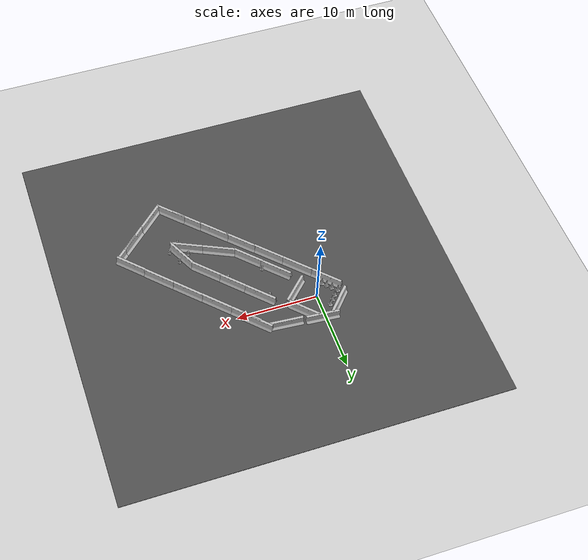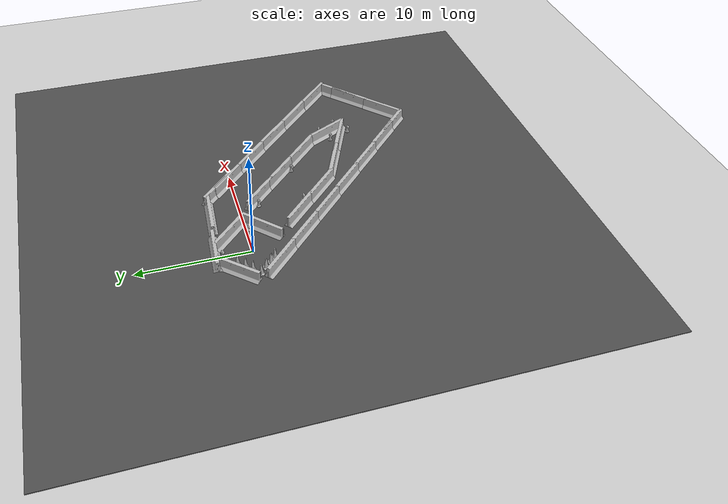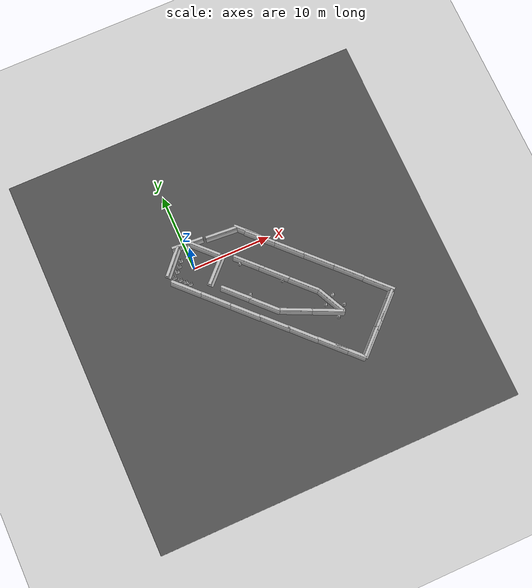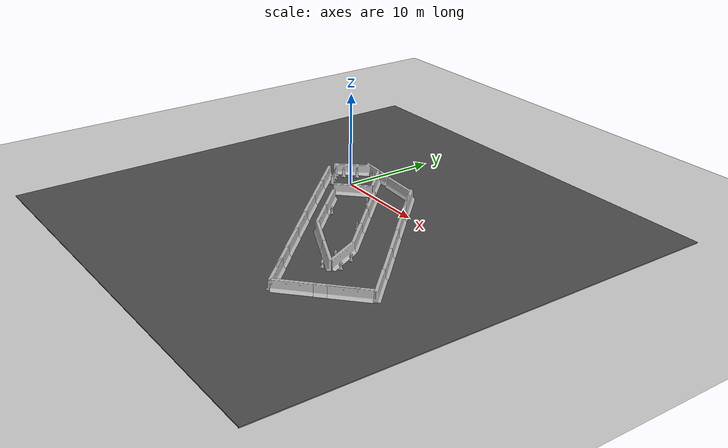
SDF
<sdf version="1.7">
 <world name="default">
  <light name="sun" type="directional">
   <pose>0 0 10 0 -0 0</pose>
   <diffuse>0.8 0.8 0.8 1</diffuse>
   <specular>0.2 0.2 0.2 1</specular>
   <attenuation>
    <range>1000</range>
    <constant>0.9</constant>
    <linear>0.01</linear>
    <quadratic>0.001</quadratic>
   </attenuation>
   <direction>-0.5 0.1 -0.9</direction>
   <spot><inner_angle>0</inner_angle><outer_angle>0</outer_angle><falloff>0</falloff></spot>
  </light>
  <model name="ground_plane">
   <static>1</static>
   <link name="link">
    <collision name="collision">
     <geometry><plane><normal>0 0 1</normal><size>100 100</size></plane></geometry>
     <surface><friction><ode><mu>100</mu><mu2>50</mu2></ode></friction></surface>
    </collision>
    <visual name="visual">
     <cast_shadows>0</cast_shadows>
     <geometry><plane><normal>0 0 1</normal><size>100 100</size></plane></geometry>
     <material>
      <script><uri>file://media/materials/scripts/gazebo.material</uri><name>Gazebo/Grey</name></script>
     </material>
    </visual>
   </link>
  </model>
  <gravity>0 0 -9.8</gravity>
  <magnetic_field>6e-06 2.3e-05 -4.2e-05</magnetic_field>
  <atmosphere type="adiabatic"/>
  <physics type="ode">
   <max_step_size>0.001</max_step_size>
   <real_time_factor>1</real_time_factor>
   <real_time_update_rate>1000</real_time_update_rate>
  </physics>
  <scene><ambient>0.4 0.4 0.4 1</ambient><background>0.7 0.7 0.7 1</background><shadows>1</shadows></scene>
  <audio><device>default</device></audio>
  <spherical_coordinates>
   <surface_model>EARTH_WGS84</surface_model>
   <latitude_deg>0</latitude_deg>
   <longitude_deg>0</longitude_deg>
   <elevation>0</elevation>
   <heading_deg>0</heading_deg>
  </spherical_coordinates>
  <model name="asphalt_plane">
   <static>1</static>
   <link name="link">
    <collision name="collision"><geometry><box><size>46.7018 49.1436 0.1</size></box></geometry></collision>
    <visual name="visual">
     <cast_shadows>0</cast_shadows>
     <geometry><box><size>46.7018 49.1436 0.1</size></box></geometry>
     <material>
      <script>
       <uri>model://asphalt_plane/materials/scripts</uri>
       <uri>model://asphalt_plane/materials/textures</uri>
       <name>vrc/asphalt</name>
      </script>
     </material>
    </visual>
   </link>
   <pose>6.15691 -5.58984 0 0 -0 0</pose>
  </model>
  <model name="Construction Cone_4_clone_clone">
   <link name="link">
    <collision name="collision">
     <geometry>
      <mesh><scale>10 10 10</scale><uri>model://construction_cone/meshes/construction_cone.dae</uri></mesh>
     </geometry>
    </collision>
    <visual name="visual">
     <geometry>
      <mesh><scale>10 10 10</scale><uri>model://construction_cone/meshes/construction_cone.dae</uri></mesh>
     </geometry>
    </visual>
    <inertial>
     <inertia><ixx>1</ixx><ixy>0</ixy><ixz>0</ixz><iyy>1</iyy><iyz>0</iyz><izz>1</izz></inertia>
     <mass>1</mass>
    </inertial>
   </link>
   <pose>-2.6682 -0.060976 0.05 0 -0 0</pose>
  </model>
  <model name="Construction Cone_4_clone_clone_clone">
   <link name="link">
    <collision name="collision">
     <geometry>
      <mesh><scale>10 10 10</scale><uri>model://construction_cone/meshes/construction_cone.dae</uri></mesh>
     </geometry>
    </collision>
    <visual name="visual">
     <geometry>
      <mesh><scale>10 10 10</scale><uri>model://construction_cone/meshes/construction_cone.dae</uri></mesh>
     </geometry>
    </visual>
    <inertial>
     <inertia><ixx>1</ixx><ixy>0</ixy><ixz>0</ixz><iyy>1</iyy><iyz>0</iyz><izz>1</izz></inertia>
     <mass>1</mass>
    </inertial>
   </link>
   <pose>2.67017 -0.030987 0.049991 0 -0 0.297791</pose>
  </model>
  <model name="fire_hydrant">
   <static>1</static>
   <link name="link">
    <collision name="collision">
     <geometry><mesh><uri>model://fire_hydrant/meshes/fire_hydrant.dae</uri></mesh></geometry>
    </collision>
    <visual name="visual">
     <geometry><mesh><uri>model://fire_hydrant/meshes/fire_hydrant.dae</uri></mesh></geometry>
    </visual>
   </link>
   <pose>0.000766 2.61649 0 0 -0 0</pose>
  </model>
  <model name="jersey_barrier">
   <static>1</static>
   <link name="link">
    <visual name="visual">
     <geometry><mesh><uri>model://jersey_barrier/meshes/jersey_barrier.dae</uri></mesh></geometry>
    </visual>
    <collision name="upright">
     <pose>0 0 0.5715 0 -0 0</pose>
     <geometry><box><size>4.06542 0.3063 1.143</size></box></geometry>
    </collision>
    <collision name="base">
     <pose>0 0 0.032258 0 -0 0</pose>
     <geometry><box><size>4.06542 0.8107 0.064516</size></box></geometry>
    </collision>
    <collision name="base2">
     <pose>0 0 0.1 0 -0 0</pose>
     <geometry><box><size>4.06542 0.65 0.1</size></box></geometry>
    </collision>
    <collision name="base3">
     <pose>0 0 0.2 0 -0 0</pose>
     <geometry><box><size>4.06542 0.5 0.1</size></box></geometry>
    </collision>
    <collision name="left-angle">
     <pose>0 -0.224 0.2401 0.9 -0 0</pose>
     <geometry><box><size>4.06542 0.5 0.064516</size></box></geometry>
    </collision>
    <collision name="right-angle">
     <pose>0 0.224 0.2401 -0.9 0 0</pose>
     <geometry><box><size>4.06542 0.5 0.064516</size></box></geometry>
    </collision>
   </link>
   <pose>-1.85554 -1.95103 0 0 0 -0.801658</pose>
  </model>
  <model name="jersey_barrier_0">
   <static>1</static>
   <link name="link">
    <visual name="visual">
     <geometry><mesh><uri>model://jersey_barrier/meshes/jersey_barrier.dae</uri></mesh></geometry>
    </visual>
    <collision name="upright">
     <pose>0 0 0.5715 0 -0 0</pose>
     <geometry><box><size>4.06542 0.3063 1.143</size></box></geometry>
    </collision>
    <collision name="base">
     <pose>0 0 0.032258 0 -0 0</pose>
     <geometry><box><size>4.06542 0.8107 0.064516</size></box></geometry>
    </collision>
    <collision name="base2">
     <pose>0 0 0.1 0 -0 0</pose>
     <geometry><box><size>4.06542 0.65 0.1</size></box></geometry>
    </collision>
    <collision name="base3">
     <pose>0 0 0.2 0 -0 0</pose>
     <geometry><box><size>4.06542 0.5 0.1</size></box></geometry>
    </collision>
    <collision name="left-angle">
     <pose>0 -0.224 0.2401 0.9 -0 0</pose>
     <geometry><box><size>4.06542 0.5 0.064516</size></box></geometry>
    </collision>
    <collision name="right-angle">
     <pose>0 0.224 0.2401 -0.9 0 0</pose>
     <geometry><box><size>4.06542 0.5 0.064516</size></box></geometry>
    </collision>
   </link>
   <pose>-2.11579 1.72846 0 0 -0 0.839514</pose>
  </model>
  <model name="jersey_barrier_1">
   <static>1</static>
   <link name="link">
    <visual name="visual">
     <geometry><mesh><uri>model://jersey_barrier/meshes/jersey_barrier.dae</uri></mesh></geometry>
    </visual>
    <collision name="upright">
     <pose>0 0 0.5715 0 -0 0</pose>
     <geometry><box><size>4.06542 0.3063 1.143</size></box></geometry>
    </collision>
    <collision name="base">
     <pose>0 0 0.032258 0 -0 0</pose>
     <geometry><box><size>4.06542 0.8107 0.064516</size></box></geometry>
    </collision>
    <collision name="base2">
     <pose>0 0 0.1 0 -0 0</pose>
     <geometry><box><size>4.06542 0.65 0.1</size></box></geometry>
    </collision>
    <collision name="base3">
     <pose>0 0 0.2 0 -0 0</pose>
     <geometry><box><size>4.06542 0.5 0.1</size></box></geometry>
    </collision>
    <collision name="left-angle">
     <pose>0 -0.224 0.2401 0.9 -0 0</pose>
     <geometry><box><size>4.06542 0.5 0.064516</size></box></geometry>
    </collision>
    <collision name="right-angle">
     <pose>0 0.224 0.2401 -0.9 0 0</pose>
     <geometry><box><size>4.06542 0.5 0.064516</size></box></geometry>
    </collision>
   </link>
   <pose>2.33482 -1.36227 0.011408 0.007203 -0.000416 0.783129</pose>
  </model>
  <model name="jersey_barrier_2">
   <static>1</static>
   <link name="link">
    <visual name="visual">
     <geometry><mesh><uri>model://jersey_barrier/meshes/jersey_barrier.dae</uri></mesh></geometry>
    </visual>
    <collision name="upright">
     <pose>0 0 0.5715 0 -0 0</pose>
     <geometry><box><size>4.06542 0.3063 1.143</size></box></geometry>
    </collision>
    <collision name="base">
     <pose>0 0 0.032258 0 -0 0</pose>
     <geometry><box><size>4.06542 0.8107 0.064516</size></box></geometry>
    </collision>
    <collision name="base2">
     <pose>0 0 0.1 0 -0 0</pose>
     <geometry><box><size>4.06542 0.65 0.1</size></box></geometry>
    </collision>
    <collision name="base3">
     <pose>0 0 0.2 0 -0 0</pose>
     <geometry><box><size>4.06542 0.5 0.1</size></box></geometry>
    </collision>
    <collision name="left-angle">
     <pose>0 -0.224 0.2401 0.9 -0 0</pose>
     <geometry><box><size>4.06542 0.5 0.064516</size></box></geometry>
    </collision>
    <collision name="right-angle">
     <pose>0 0.224 0.2401 -0.9 0 0</pose>
     <geometry><box><size>4.06542 0.5 0.064516</size></box></geometry>
    </collision>
   </link>
   <pose>0.443474 3.1446 0 0 0 -0.074187</pose>
  </model>
  <model name="jersey_barrier_clone">
   <static>1</static>
   <link name="link">
    <visual name="visual">
     <geometry><mesh><uri>model://jersey_barrier/meshes/jersey_barrier.dae</uri></mesh></geometry>
    </visual>
    <collision name="upright">
     <pose>0 0 0.5715 0 -0 0</pose>
     <geometry><box><size>4.06542 0.3063 1.143</size></box></geometry>
    </collision>
    <collision name="base">
     <pose>0 0 0.032258 0 -0 0</pose>
     <geometry><box><size>4.06542 0.8107 0.064516</size></box></geometry>
    </collision>
    <collision name="base2">
     <pose>0 0 0.1 0 -0 0</pose>
     <geometry><box><size>4.06542 0.65 0.1</size></box></geometry>
    </collision>
    <collision name="base3">
     <pose>0 0 0.2 0 -0 0</pose>
     <geometry><box><size>4.06542 0.5 0.1</size></box></geometry>
    </collision>
    <collision name="left-angle">
     <pose>0 -0.224 0.2401 0.9 -0 0</pose>
     <geometry><box><size>4.06542 0.5 0.064516</size></box></geometry>
    </collision>
    <collision name="right-angle">
     <pose>0 0.224 0.2401 -0.9 0 0</pose>
     <geometry><box><size>4.06542 0.5 0.064516</size></box></geometry>
    </collision>
   </link>
   <pose>2.19609 1.60895 0 0 0 -0.801658</pose>
  </model>
  <model name="Construction Cone_4_clone_clone_clone_0">
   <link name="link">
    <collision name="collision">
     <geometry>
      <mesh><scale>10 10 10</scale><uri>model://construction_cone/meshes/construction_cone.dae</uri></mesh>
     </geometry>
    </collision>
    <visual name="visual">
     <geometry>
      <mesh><scale>10 10 10</scale><uri>model://construction_cone/meshes/construction_cone.dae</uri></mesh>
     </geometry>
    </visual>
    <inertial>
     <inertia><ixx>1</ixx><ixy>0</ixy><ixz>0</ixz><iyy>1</iyy><iyz>0</iyz><izz>1</izz></inertia>
     <mass>1</mass>
    </inertial>
   </link>
   <pose>-2.10482 -0.60902 0.05 -1e-06 0 0</pose>
  </model>
  <model name="Construction Cone_4_clone_clone_clone_1">
   <link name="link">
    <collision name="collision">
     <geometry>
      <mesh><scale>10 10 10</scale><uri>model://construction_cone/meshes/construction_cone.dae</uri></mesh>
     </geometry>
    </collision>
    <visual name="visual">
     <geometry>
      <mesh><scale>10 10 10</scale><uri>model://construction_cone/meshes/construction_cone.dae</uri></mesh>
     </geometry>
    </visual>
    <inertial>
     <inertia><ixx>1</ixx><ixy>0</ixy><ixz>0</ixz><iyy>1</iyy><iyz>0</iyz><izz>1</izz></inertia>
     <mass>1</mass>
    </inertial>
   </link>
   <pose>-2.06646 0.501267 0.05 -1e-06 -0 0</pose>
  </model>
  <model name="Construction Cone_4_clone_clone_clone_2">
   <link name="link">
    <collision name="collision">
     <geometry>
      <mesh><scale>10 10 10</scale><uri>model://construction_cone/meshes/construction_cone.dae</uri></mesh>
     </geometry>
    </collision>
    <visual name="visual">
     <geometry>
      <mesh><scale>10 10 10</scale><uri>model://construction_cone/meshes/construction_cone.dae</uri></mesh>
     </geometry>
    </visual>
    <inertial>
     <inertia><ixx>1</ixx><ixy>0</ixy><ixz>0</ixz><iyy>1</iyy><iyz>0</iyz><izz>1</izz></inertia>
     <mass>1</mass>
    </inertial>
   </link>
   <pose>-1.62516 -1.12694 0.049999 1e-06 3e-06 -0</pose>
  </model>
  <model name="Construction Cone_4_clone_clone_clone_3">
   <link name="link">
    <collision name="collision">
     <geometry>
      <mesh><scale>10 10 10</scale><uri>model://construction_cone/meshes/construction_cone.dae</uri></mesh>
     </geometry>
    </collision>
    <visual name="visual">
     <geometry>
      <mesh><scale>10 10 10</scale><uri>model://construction_cone/meshes/construction_cone.dae</uri></mesh>
     </geometry>
    </visual>
    <inertial>
     <inertia><ixx>1</ixx><ixy>0</ixy><ixz>0</ixz><iyy>1</iyy><iyz>0</iyz><izz>1</izz></inertia>
     <mass>1</mass>
    </inertial>
   </link>
   <pose>-1.18524 -1.5802 0.05 0 -0 0</pose>
  </model>
  <model name="Construction Cone_4_clone_clone_clone_4">
   <link name="link">
    <collision name="collision">
     <geometry>
      <mesh><scale>10 10 10</scale><uri>model://construction_cone/meshes/construction_cone.dae</uri></mesh>
     </geometry>
    </collision>
    <visual name="visual">
     <geometry>
      <mesh><scale>10 10 10</scale><uri>model://construction_cone/meshes/construction_cone.dae</uri></mesh>
     </geometry>
    </visual>
    <inertial>
     <inertia><ixx>1</ixx><ixy>0</ixy><ixz>0</ixz><iyy>1</iyy><iyz>0</iyz><izz>1</izz></inertia>
     <mass>1</mass>
    </inertial>
   </link>
   <pose>-1.58993 1.02235 0.05 -1e-06 -0 -0</pose>
  </model>
  <model name="Construction Cone_4_clone_clone_clone_5">
   <link name="link">
    <collision name="collision">
     <geometry>
      <mesh><scale>10 10 10</scale><uri>model://construction_cone/meshes/construction_cone.dae</uri></mesh>
     </geometry>
    </collision>
    <visual name="visual">
     <geometry>
      <mesh><scale>10 10 10</scale><uri>model://construction_cone/meshes/construction_cone.dae</uri></mesh>
     </geometry>
    </visual>
    <inertial>
     <inertia><ixx>1</ixx><ixy>0</ixy><ixz>0</ixz><iyy>1</iyy><iyz>0</iyz><izz>1</izz></inertia>
     <mass>1</mass>
    </inertial>
   </link>
   <pose>-1.12586 1.58595 0.05 0 -0 0</pose>
  </model>
  <model name="jersey_barrier_clone_0">
   <static>1</static>
   <link name="link">
    <visual name="visual">
     <geometry><mesh><uri>model://jersey_barrier/meshes/jersey_barrier.dae</uri></mesh></geometry>
    </visual>
    <collision name="upright">
     <pose>0 0 0.5715 0 -0 0</pose>
     <geometry><box><size>4.06542 0.3063 1.143</size></box></geometry>
    </collision>
    <collision name="base">
     <pose>0 0 0.032258 0 -0 0</pose>
     <geometry><box><size>4.06542 0.8107 0.064516</size></box></geometry>
    </collision>
    <collision name="base2">
     <pose>0 0 0.1 0 -0 0</pose>
     <geometry><box><size>4.06542 0.65 0.1</size></box></geometry>
    </collision>
    <collision name="base3">
     <pose>0 0 0.2 0 -0 0</pose>
     <geometry><box><size>4.06542 0.5 0.1</size></box></geometry>
    </collision>
    <collision name="left-angle">
     <pose>0 -0.224 0.2401 0.9 -0 0</pose>
     <geometry><box><size>4.06542 0.5 0.064516</size></box></geometry>
    </collision>
    <collision name="right-angle">
     <pose>0 0.224 0.2401 -0.9 0 0</pose>
     <geometry><box><size>4.06542 0.5 0.064516</size></box></geometry>
    </collision>
   </link>
   <pose>0.873662 -4.75446 0 0 0 -0.801658</pose>
  </model>
  <model name="jersey_barrier_clone_1">
   <static>1</static>
   <link name="link">
    <visual name="visual">
     <geometry><mesh><uri>model://jersey_barrier/meshes/jersey_barrier.dae</uri></mesh></geometry>
    </visual>
    <collision name="upright">
     <pose>0 0 0.5715 0 -0 0</pose>
     <geometry><box><size>4.06542 0.3063 1.143</size></box></geometry>
    </collision>
    <collision name="base">
     <pose>0 0 0.032258 0 -0 0</pose>
     <geometry><box><size>4.06542 0.8107 0.064516</size></box></geometry>
    </collision>
    <collision name="base2">
     <pose>0 0 0.1 0 -0 0</pose>
     <geometry><box><size>4.06542 0.65 0.1</size></box></geometry>
    </collision>
    <collision name="base3">
     <pose>0 0 0.2 0 -0 0</pose>
     <geometry><box><size>4.06542 0.5 0.1</size></box></geometry>
    </collision>
    <collision name="left-angle">
     <pose>0 -0.224 0.2401 0.9 -0 0</pose>
     <geometry><box><size>4.06542 0.5 0.064516</size></box></geometry>
    </collision>
    <collision name="right-angle">
     <pose>0 0.224 0.2401 -0.9 0 0</pose>
     <geometry><box><size>4.06542 0.5 0.064516</size></box></geometry>
    </collision>
   </link>
   <pose>3.5774 -7.53993 0 0 0 -0.801658</pose>
  </model>
  <model name="jersey_barrier_clone_2">
   <static>1</static>
   <link name="link">
    <visual name="visual">
     <geometry><mesh><uri>model://jersey_barrier/meshes/jersey_barrier.dae</uri></mesh></geometry>
    </visual>
    <collision name="upright">
     <pose>0 0 0.5715 0 -0 0</pose>
     <geometry><box><size>4.06542 0.3063 1.143</size></box></geometry>
    </collision>
    <collision name="base">
     <pose>0 0 0.032258 0 -0 0</pose>
     <geometry><box><size>4.06542 0.8107 0.064516</size></box></geometry>
    </collision>
    <collision name="base2">
     <pose>0 0 0.1 0 -0 0</pose>
     <geometry><box><size>4.06542 0.65 0.1</size></box></geometry>
    </collision>
    <collision name="base3">
     <pose>0 0 0.2 0 -0 0</pose>
     <geometry><box><size>4.06542 0.5 0.1</size></box></geometry>
    </collision>
    <collision name="left-angle">
     <pose>0 -0.224 0.2401 0.9 -0 0</pose>
     <geometry><box><size>4.06542 0.5 0.064516</size></box></geometry>
    </collision>
    <collision name="right-angle">
     <pose>0 0.224 0.2401 -0.9 0 0</pose>
     <geometry><box><size>4.06542 0.5 0.064516</size></box></geometry>
    </collision>
   </link>
   <pose>6.27443 -10.2689 0 0 0 -0.801658</pose>
  </model>
  <model name="jersey_barrier_clone_3">
   <static>1</static>
   <link name="link">
    <visual name="visual">
     <geometry><mesh><uri>model://jersey_barrier/meshes/jersey_barrier.dae</uri></mesh></geometry>
    </visual>
    <collision name="upright">
     <pose>0 0 0.5715 0 -0 0</pose>
     <geometry><box><size>4.06542 0.3063 1.143</size></box></geometry>
    </collision>
    <collision name="base">
     <pose>0 0 0.032258 0 -0 0</pose>
     <geometry><box><size>4.06542 0.8107 0.064516</size></box></geometry>
    </collision>
    <collision name="base2">
     <pose>0 0 0.1 0 -0 0</pose>
     <geometry><box><size>4.06542 0.65 0.1</size></box></geometry>
    </collision>
    <collision name="base3">
     <pose>0 0 0.2 0 -0 0</pose>
     <geometry><box><size>4.06542 0.5 0.1</size></box></geometry>
    </collision>
    <collision name="left-angle">
     <pose>0 -0.224 0.2401 0.9 -0 0</pose>
     <geometry><box><size>4.06542 0.5 0.064516</size></box></geometry>
    </collision>
    <collision name="right-angle">
     <pose>0 0.224 0.2401 -0.9 0 0</pose>
     <geometry><box><size>4.06542 0.5 0.064516</size></box></geometry>
    </collision>
   </link>
   <pose>8.88419 -12.9197 0 0 0 -0.801658</pose>
  </model>
  <model name="jersey_barrier_clone_4">
   <static>1</static>
   <link name="link">
    <visual name="visual">
     <geometry><mesh><uri>model://jersey_barrier/meshes/jersey_barrier.dae</uri></mesh></geometry>
    </visual>
    <collision name="upright">
     <pose>0 0 0.5715 0 -0 0</pose>
     <geometry><box><size>4.06542 0.3063 1.143</size></box></geometry>
    </collision>
    <collision name="base">
     <pose>0 0 0.032258 0 -0 0</pose>
     <geometry><box><size>4.06542 0.8107 0.064516</size></box></geometry>
    </collision>
    <collision name="base2">
     <pose>0 0 0.1 0 -0 0</pose>
     <geometry><box><size>4.06542 0.65 0.1</size></box></geometry>
    </collision>
    <collision name="base3">
     <pose>0 0 0.2 0 -0 0</pose>
     <geometry><box><size>4.06542 0.5 0.1</size></box></geometry>
    </collision>
    <collision name="left-angle">
     <pose>0 -0.224 0.2401 0.9 -0 0</pose>
     <geometry><box><size>4.06542 0.5 0.064516</size></box></geometry>
    </collision>
    <collision name="right-angle">
     <pose>0 0.224 0.2401 -0.9 0 0</pose>
     <geometry><box><size>4.06542 0.5 0.064516</size></box></geometry>
    </collision>
   </link>
   <pose>11.5844 -15.6475 0 0 0 -0.801658</pose>
  </model>
  <model name="jersey_barrier_clone_5">
   <static>1</static>
   <link name="link">
    <visual name="visual">
     <geometry><mesh><uri>model://jersey_barrier/meshes/jersey_barrier.dae</uri></mesh></geometry>
    </visual>
    <collision name="upright">
     <pose>0 0 0.5715 0 -0 0</pose>
     <geometry><box><size>4.06542 0.3063 1.143</size></box></geometry>
    </collision>
    <collision name="base">
     <pose>0 0 0.032258 0 -0 0</pose>
     <geometry><box><size>4.06542 0.8107 0.064516</size></box></geometry>
    </collision>
    <collision name="base2">
     <pose>0 0 0.1 0 -0 0</pose>
     <geometry><box><size>4.06542 0.65 0.1</size></box></geometry>
    </collision>
    <collision name="base3">
     <pose>0 0 0.2 0 -0 0</pose>
     <geometry><box><size>4.06542 0.5 0.1</size></box></geometry>
    </collision>
    <collision name="left-angle">
     <pose>0 -0.224 0.2401 0.9 -0 0</pose>
     <geometry><box><size>4.06542 0.5 0.064516</size></box></geometry>
    </collision>
    <collision name="right-angle">
     <pose>0 0.224 0.2401 -0.9 0 0</pose>
     <geometry><box><size>4.06542 0.5 0.064516</size></box></geometry>
    </collision>
   </link>
   <pose>3.48641 -5.04299 0 0 0 -0.801658</pose>
  </model>
  <model name="jersey_barrier_clone_5_clone">
   <static>1</static>
   <link name="link">
    <visual name="visual">
     <geometry><mesh><uri>model://jersey_barrier/meshes/jersey_barrier.dae</uri></mesh></geometry>
    </visual>
    <collision name="upright">
     <pose>0 0 0.5715 0 -0 0</pose>
     <geometry><box><size>4.06542 0.3063 1.143</size></box></geometry>
    </collision>
    <collision name="base">
     <pose>0 0 0.032258 0 -0 0</pose>
     <geometry><box><size>4.06542 0.8107 0.064516</size></box></geometry>
    </collision>
    <collision name="base2">
     <pose>0 0 0.1 0 -0 0</pose>
     <geometry><box><size>4.06542 0.65 0.1</size></box></geometry>
    </collision>
    <collision name="base3">
     <pose>0 0 0.2 0 -0 0</pose>
     <geometry><box><size>4.06542 0.5 0.1</size></box></geometry>
    </collision>
    <collision name="left-angle">
     <pose>0 -0.224 0.2401 0.9 -0 0</pose>
     <geometry><box><size>4.06542 0.5 0.064516</size></box></geometry>
    </collision>
    <collision name="right-angle">
     <pose>0 0.224 0.2401 -0.9 0 0</pose>
     <geometry><box><size>4.06542 0.5 0.064516</size></box></geometry>
    </collision>
   </link>
   <pose>6.08884 -7.76781 0 0 0 -0.801658</pose>
  </model>
  <model name="jersey_barrier_clone_5_clone_clone">
   <static>1</static>
   <link name="link">
    <visual name="visual">
     <geometry><mesh><uri>model://jersey_barrier/meshes/jersey_barrier.dae</uri></mesh></geometry>
    </visual>
    <collision name="upright">
     <pose>0 0 0.5715 0 -0 0</pose>
     <geometry><box><size>4.06542 0.3063 1.143</size></box></geometry>
    </collision>
    <collision name="base">
     <pose>0 0 0.032258 0 -0 0</pose>
     <geometry><box><size>4.06542 0.8107 0.064516</size></box></geometry>
    </collision>
    <collision name="base2">
     <pose>0 0 0.1 0 -0 0</pose>
     <geometry><box><size>4.06542 0.65 0.1</size></box></geometry>
    </collision>
    <collision name="base3">
     <pose>0 0 0.2 0 -0 0</pose>
     <geometry><box><size>4.06542 0.5 0.1</size></box></geometry>
    </collision>
    <collision name="left-angle">
     <pose>0 -0.224 0.2401 0.9 -0 0</pose>
     <geometry><box><size>4.06542 0.5 0.064516</size></box></geometry>
    </collision>
    <collision name="right-angle">
     <pose>0 0.224 0.2401 -0.9 0 0</pose>
     <geometry><box><size>4.06542 0.5 0.064516</size></box></geometry>
    </collision>
   </link>
   <pose>9.24063 -9.94722 0 0 0 -0.439178</pose>
  </model>
  <model name="jersey_barrier_clone_5_clone_clone_clone">
   <static>1</static>
   <link name="link">
    <visual name="visual">
     <geometry><mesh><uri>model://jersey_barrier/meshes/jersey_barrier.dae</uri></mesh></geometry>
    </visual>
    <collision name="upright">
     <pose>0 0 0.5715 0 -0 0</pose>
     <geometry><box><size>4.06542 0.3063 1.143</size></box></geometry>
    </collision>
    <collision name="base">
     <pose>0 0 0.032258 0 -0 0</pose>
     <geometry><box><size>4.06542 0.8107 0.064516</size></box></geometry>
    </collision>
    <collision name="base2">
     <pose>0 0 0.1 0 -0 0</pose>
     <geometry><box><size>4.06542 0.65 0.1</size></box></geometry>
    </collision>
    <collision name="base3">
     <pose>0 0 0.2 0 -0 0</pose>
     <geometry><box><size>4.06542 0.5 0.1</size></box></geometry>
    </collision>
    <collision name="left-angle">
     <pose>0 -0.224 0.2401 0.9 -0 0</pose>
     <geometry><box><size>4.06542 0.5 0.064516</size></box></geometry>
    </collision>
    <collision name="right-angle">
     <pose>0 0.224 0.2401 -0.9 0 0</pose>
     <geometry><box><size>4.06542 0.5 0.064516</size></box></geometry>
    </collision>
   </link>
   <pose>12.8333 -11.6294 0 0 0 -0.439178</pose>
  </model>
  <model name="jersey_barrier_clone_5_clone_clone_clone_clone">
   <static>1</static>
   <link name="link">
    <visual name="visual">
     <geometry><mesh><uri>model://jersey_barrier/meshes/jersey_barrier.dae</uri></mesh></geometry>
    </visual>
    <collision name="upright">
     <pose>0 0 0.5715 0 -0 0</pose>
     <geometry><box><size>4.06542 0.3063 1.143</size></box></geometry>
    </collision>
    <collision name="base">
     <pose>0 0 0.032258 0 -0 0</pose>
     <geometry><box><size>4.06542 0.8107 0.064516</size></box></geometry>
    </collision>
    <collision name="base2">
     <pose>0 0 0.1 0 -0 0</pose>
     <geometry><box><size>4.06542 0.65 0.1</size></box></geometry>
    </collision>
    <collision name="base3">
     <pose>0 0 0.2 0 -0 0</pose>
     <geometry><box><size>4.06542 0.5 0.1</size></box></geometry>
    </collision>
    <collision name="left-angle">
     <pose>0 -0.224 0.2401 0.9 -0 0</pose>
     <geometry><box><size>4.06542 0.5 0.064516</size></box></geometry>
    </collision>
    <collision name="right-angle">
     <pose>0 0.224 0.2401 -0.9 0 0</pose>
     <geometry><box><size>4.06542 0.5 0.064516</size></box></geometry>
    </collision>
   </link>
   <pose>13.7174 -10.6036 0 0 0 -1.12639</pose>
  </model>
  <model name="jersey_barrier_clone_5_clone_clone_0">
   <static>1</static>
   <link name="link">
    <visual name="visual">
     <geometry><mesh><uri>model://jersey_barrier/meshes/jersey_barrier.dae</uri></mesh></geometry>
    </visual>
    <collision name="upright">
     <pose>0 0 0.5715 0 -0 0</pose>
     <geometry><box><size>4.06542 0.3063 1.143</size></box></geometry>
    </collision>
    <collision name="base">
     <pose>0 0 0.032258 0 -0 0</pose>
     <geometry><box><size>4.06542 0.8107 0.064516</size></box></geometry>
    </collision>
    <collision name="base2">
     <pose>0 0 0.1 0 -0 0</pose>
     <geometry><box><size>4.06542 0.65 0.1</size></box></geometry>
    </collision>
    <collision name="base3">
     <pose>0 0 0.2 0 -0 0</pose>
     <geometry><box><size>4.06542 0.5 0.1</size></box></geometry>
    </collision>
    <collision name="left-angle">
     <pose>0 -0.224 0.2401 0.9 -0 0</pose>
     <geometry><box><size>4.06542 0.5 0.064516</size></box></geometry>
    </collision>
    <collision name="right-angle">
     <pose>0 0.224 0.2401 -0.9 0 0</pose>
     <geometry><box><size>4.06542 0.5 0.064516</size></box></geometry>
    </collision>
   </link>
   <pose>11.4997 -7.37985 0 0 0 -0.801658</pose>
  </model>
  <model name="jersey_barrier_clone_5_clone_clone_1">
   <static>1</static>
   <link name="link">
    <visual name="visual">
     <geometry><mesh><uri>model://jersey_barrier/meshes/jersey_barrier.dae</uri></mesh></geometry>
    </visual>
    <collision name="upright">
     <pose>0 0 0.5715 0 -0 0</pose>
     <geometry><box><size>4.06542 0.3063 1.143</size></box></geometry>
    </collision>
    <collision name="base">
     <pose>0 0 0.032258 0 -0 0</pose>
     <geometry><box><size>4.06542 0.8107 0.064516</size></box></geometry>
    </collision>
    <collision name="base2">
     <pose>0 0 0.1 0 -0 0</pose>
     <geometry><box><size>4.06542 0.65 0.1</size></box></geometry>
    </collision>
    <collision name="base3">
     <pose>0 0 0.2 0 -0 0</pose>
     <geometry><box><size>4.06542 0.5 0.1</size></box></geometry>
    </collision>
    <collision name="left-angle">
     <pose>0 -0.224 0.2401 0.9 -0 0</pose>
     <geometry><box><size>4.06542 0.5 0.064516</size></box></geometry>
    </collision>
    <collision name="right-angle">
     <pose>0 0.224 0.2401 -0.9 0 0</pose>
     <geometry><box><size>4.06542 0.5 0.064516</size></box></geometry>
    </collision>
   </link>
   <pose>8.80553 -4.5792 0 0 0 -0.801658</pose>
  </model>
  <model name="jersey_barrier_clone_5_clone_clone_2">
   <static>1</static>
   <link name="link">
    <visual name="visual">
     <geometry><mesh><uri>model://jersey_barrier/meshes/jersey_barrier.dae</uri></mesh></geometry>
    </visual>
    <collision name="upright">
     <pose>0 0 0.5715 0 -0 0</pose>
     <geometry><box><size>4.06542 0.3063 1.143</size></box></geometry>
    </collision>
    <collision name="base">
     <pose>0 0 0.032258 0 -0 0</pose>
     <geometry><box><size>4.06542 0.8107 0.064516</size></box></geometry>
    </collision>
    <collision name="base2">
     <pose>0 0 0.1 0 -0 0</pose>
     <geometry><box><size>4.06542 0.65 0.1</size></box></geometry>
    </collision>
    <collision name="base3">
     <pose>0 0 0.2 0 -0 0</pose>
     <geometry><box><size>4.06542 0.5 0.1</size></box></geometry>
    </collision>
    <collision name="left-angle">
     <pose>0 -0.224 0.2401 0.9 -0 0</pose>
     <geometry><box><size>4.06542 0.5 0.064516</size></box></geometry>
    </collision>
    <collision name="right-angle">
     <pose>0 0.224 0.2401 -0.9 0 0</pose>
     <geometry><box><size>4.06542 0.5 0.064516</size></box></geometry>
    </collision>
   </link>
   <pose>6.43805 -2.12096 0 0 0 -0.801658</pose>
  </model>
  <model name="fire_hydrant_0">
   <static>1</static>
   <link name="link">
    <collision name="collision">
     <geometry><mesh><uri>model://fire_hydrant/meshes/fire_hydrant.dae</uri></mesh></geometry>
    </collision>
    <visual name="visual">
     <geometry><mesh><uri>model://fire_hydrant/meshes/fire_hydrant.dae</uri></mesh></geometry>
    </visual>
   </link>
   <pose>13.7254 -12.7642 0 0 -0 0</pose>
  </model>
  <model name="fire_hydrant_1">
   <static>1</static>
   <link name="link">
    <collision name="collision">
     <geometry><mesh><uri>model://fire_hydrant/meshes/fire_hydrant.dae</uri></mesh></geometry>
    </collision>
    <visual name="visual">
     <geometry><mesh><uri>model://fire_hydrant/meshes/fire_hydrant.dae</uri></mesh></geometry>
    </visual>
   </link>
   <pose>14.9954 -11.6288 0 0 -0 0</pose>
  </model>
  <model name="jersey_barrier_clone_4_clone">
   <static>1</static>
   <link name="link">
    <visual name="visual">
     <geometry><mesh><uri>model://jersey_barrier/meshes/jersey_barrier.dae</uri></mesh></geometry>
    </visual>
    <collision name="upright">
     <pose>0 0 0.5715 0 -0 0</pose>
     <geometry><box><size>4.06542 0.3063 1.143</size></box></geometry>
    </collision>
    <collision name="base">
     <pose>0 0 0.032258 0 -0 0</pose>
     <geometry><box><size>4.06542 0.8107 0.064516</size></box></geometry>
    </collision>
    <collision name="base2">
     <pose>0 0 0.1 0 -0 0</pose>
     <geometry><box><size>4.06542 0.65 0.1</size></box></geometry>
    </collision>
    <collision name="base3">
     <pose>0 0 0.2 0 -0 0</pose>
     <geometry><box><size>4.06542 0.5 0.1</size></box></geometry>
    </collision>
    <collision name="left-angle">
     <pose>0 -0.224 0.2401 0.9 -0 0</pose>
     <geometry><box><size>4.06542 0.5 0.064516</size></box></geometry>
    </collision>
    <collision name="right-angle">
     <pose>0 0.224 0.2401 -0.9 0 0</pose>
     <geometry><box><size>4.06542 0.5 0.064516</size></box></geometry>
    </collision>
   </link>
   <pose>13.1987 -17.272 0 0 0 -0.801658</pose>
  </model>
  <model name="jersey_barrier_clone_4_clone_clone">
   <static>1</static>
   <link name="link">
    <visual name="visual">
     <geometry><mesh><uri>model://jersey_barrier/meshes/jersey_barrier.dae</uri></mesh></geometry>
    </visual>
    <collision name="upright">
     <pose>0 0 0.5715 0 -0 0</pose>
     <geometry><box><size>4.06542 0.3063 1.143</size></box></geometry>
    </collision>
    <collision name="base">
     <pose>0 0 0.032258 0 -0 0</pose>
     <geometry><box><size>4.06542 0.8107 0.064516</size></box></geometry>
    </collision>
    <collision name="base2">
     <pose>0 0 0.1 0 -0 0</pose>
     <geometry><box><size>4.06542 0.65 0.1</size></box></geometry>
    </collision>
    <collision name="base3">
     <pose>0 0 0.2 0 -0 0</pose>
     <geometry><box><size>4.06542 0.5 0.1</size></box></geometry>
    </collision>
    <collision name="left-angle">
     <pose>0 -0.224 0.2401 0.9 -0 0</pose>
     <geometry><box><size>4.06542 0.5 0.064516</size></box></geometry>
    </collision>
    <collision name="right-angle">
     <pose>0 0.224 0.2401 -0.9 0 0</pose>
     <geometry><box><size>4.06542 0.5 0.064516</size></box></geometry>
    </collision>
   </link>
   <pose>15.9583 -17.1924 0 0 0 -2.38011</pose>
  </model>
  <model name="jersey_barrier_clone_4_clone_clone_clone">
   <static>1</static>
   <link name="link">
    <visual name="visual">
     <geometry><mesh><uri>model://jersey_barrier/meshes/jersey_barrier.dae</uri></mesh></geometry>
    </visual>
    <collision name="upright">
     <pose>0 0 0.5715 0 -0 0</pose>
     <geometry><box><size>4.06542 0.3063 1.143</size></box></geometry>
    </collision>
    <collision name="base">
     <pose>0 0 0.032258 0 -0 0</pose>
     <geometry><box><size>4.06542 0.8107 0.064516</size></box></geometry>
    </collision>
    <collision name="base2">
     <pose>0 0 0.1 0 -0 0</pose>
     <geometry><box><size>4.06542 0.65 0.1</size></box></geometry>
    </collision>
    <collision name="base3">
     <pose>0 0 0.2 0 -0 0</pose>
     <geometry><box><size>4.06542 0.5 0.1</size></box></geometry>
    </collision>
    <collision name="left-angle">
     <pose>0 -0.224 0.2401 0.9 -0 0</pose>
     <geometry><box><size>4.06542 0.5 0.064516</size></box></geometry>
    </collision>
    <collision name="right-angle">
     <pose>0 0.224 0.2401 -0.9 0 0</pose>
     <geometry><box><size>4.06542 0.5 0.064516</size></box></geometry>
    </collision>
   </link>
   <pose>18.7264 -14.5881 0 0 0 -2.38011</pose>
  </model>
  <model name="jersey_barrier_clone_4_clone_clone_clone_clone">
   <static>1</static>
   <link name="link">
    <visual name="visual">
     <geometry><mesh><uri>model://jersey_barrier/meshes/jersey_barrier.dae</uri></mesh></geometry>
    </visual>
    <collision name="upright">
     <pose>0 0 0.5715 0 -0 0</pose>
     <geometry><box><size>4.06542 0.3063 1.143</size></box></geometry>
    </collision>
    <collision name="base">
     <pose>0 0 0.032258 0 -0 0</pose>
     <geometry><box><size>4.06542 0.8107 0.064516</size></box></geometry>
    </collision>
    <collision name="base2">
     <pose>0 0 0.1 0 -0 0</pose>
     <geometry><box><size>4.06542 0.65 0.1</size></box></geometry>
    </collision>
    <collision name="base3">
     <pose>0 0 0.2 0 -0 0</pose>
     <geometry><box><size>4.06542 0.5 0.1</size></box></geometry>
    </collision>
    <collision name="left-angle">
     <pose>0 -0.224 0.2401 0.9 -0 0</pose>
     <geometry><box><size>4.06542 0.5 0.064516</size></box></geometry>
    </collision>
    <collision name="right-angle">
     <pose>0 0.224 0.2401 -0.9 0 0</pose>
     <geometry><box><size>4.06542 0.5 0.064516</size></box></geometry>
    </collision>
   </link>
   <pose>19.5895 -13.767 0 0 0 -2.38011</pose>
  </model>
  <model name="jersey_barrier_clone_4_clone_clone_0">
   <static>1</static>
   <link name="link">
    <visual name="visual">
     <geometry><mesh><uri>model://jersey_barrier/meshes/jersey_barrier.dae</uri></mesh></geometry>
    </visual>
    <collision name="upright">
     <pose>0 0 0.5715 0 -0 0</pose>
     <geometry><box><size>4.06542 0.3063 1.143</size></box></geometry>
    </collision>
    <collision name="base">
     <pose>0 0 0.032258 0 -0 0</pose>
     <geometry><box><size>4.06542 0.8107 0.064516</size></box></geometry>
    </collision>
    <collision name="base2">
     <pose>0 0 0.1 0 -0 0</pose>
     <geometry><box><size>4.06542 0.65 0.1</size></box></geometry>
    </collision>
    <collision name="base3">
     <pose>0 0 0.2 0 -0 0</pose>
     <geometry><box><size>4.06542 0.5 0.1</size></box></geometry>
    </collision>
    <collision name="left-angle">
     <pose>0 -0.224 0.2401 0.9 -0 0</pose>
     <geometry><box><size>4.06542 0.5 0.064516</size></box></geometry>
    </collision>
    <collision name="right-angle">
     <pose>0 0.224 0.2401 -0.9 0 0</pose>
     <geometry><box><size>4.06542 0.5 0.064516</size></box></geometry>
    </collision>
   </link>
   <pose>19.9679 -11.0245 0 0 0 -0.801658</pose>
  </model>
  <model name="jersey_barrier_clone_4_clone_clone_0_clone">
   <static>1</static>
   <link name="link">
    <visual name="visual">
     <geometry><mesh><uri>model://jersey_barrier/meshes/jersey_barrier.dae</uri></mesh></geometry>
    </visual>
    <collision name="upright">
     <pose>0 0 0.5715 0 -0 0</pose>
     <geometry><box><size>4.06542 0.3063 1.143</size></box></geometry>
    </collision>
    <collision name="base">
     <pose>0 0 0.032258 0 -0 0</pose>
     <geometry><box><size>4.06542 0.8107 0.064516</size></box></geometry>
    </collision>
    <collision name="base2">
     <pose>0 0 0.1 0 -0 0</pose>
     <geometry><box><size>4.06542 0.65 0.1</size></box></geometry>
    </collision>
    <collision name="base3">
     <pose>0 0 0.2 0 -0 0</pose>
     <geometry><box><size>4.06542 0.5 0.1</size></box></geometry>
    </collision>
    <collision name="left-angle">
     <pose>0 -0.224 0.2401 0.9 -0 0</pose>
     <geometry><box><size>4.06542 0.5 0.064516</size></box></geometry>
    </collision>
    <collision name="right-angle">
     <pose>0 0.224 0.2401 -0.9 0 0</pose>
     <geometry><box><size>4.06542 0.5 0.064516</size></box></geometry>
    </collision>
   </link>
   <pose>17.2387 -8.14944 0 0 0 -0.801658</pose>
  </model>
  <model name="jersey_barrier_clone_4_clone_clone_0_clone_0">
   <static>1</static>
   <link name="link">
    <visual name="visual">
     <geometry><mesh><uri>model://jersey_barrier/meshes/jersey_barrier.dae</uri></mesh></geometry>
    </visual>
    <collision name="upright">
     <pose>0 0 0.5715 0 -0 0</pose>
     <geometry><box><size>4.06542 0.3063 1.143</size></box></geometry>
    </collision>
    <collision name="base">
     <pose>0 0 0.032258 0 -0 0</pose>
     <geometry><box><size>4.06542 0.8107 0.064516</size></box></geometry>
    </collision>
    <collision name="base2">
     <pose>0 0 0.1 0 -0 0</pose>
     <geometry><box><size>4.06542 0.65 0.1</size></box></geometry>
    </collision>
    <collision name="base3">
     <pose>0 0 0.2 0 -0 0</pose>
     <geometry><box><size>4.06542 0.5 0.1</size></box></geometry>
    </collision>
    <collision name="left-angle">
     <pose>0 -0.224 0.2401 0.9 -0 0</pose>
     <geometry><box><size>4.06542 0.5 0.064516</size></box></geometry>
    </collision>
    <collision name="right-angle">
     <pose>0 0.224 0.2401 -0.9 0 0</pose>
     <geometry><box><size>4.06542 0.5 0.064516</size></box></geometry>
    </collision>
   </link>
   <pose>14.4747 -5.30828 0 0 0 -0.801658</pose>
  </model>
  <model name="jersey_barrier_clone_4_clone_clone_0_clone_1">
   <static>1</static>
   <link name="link">
    <visual name="visual">
     <geometry><mesh><uri>model://jersey_barrier/meshes/jersey_barrier.dae</uri></mesh></geometry>
    </visual>
    <collision name="upright">
     <pose>0 0 0.5715 0 -0 0</pose>
     <geometry><box><size>4.06542 0.3063 1.143</size></box></geometry>
    </collision>
    <collision name="base">
     <pose>0 0 0.032258 0 -0 0</pose>
     <geometry><box><size>4.06542 0.8107 0.064516</size></box></geometry>
    </collision>
    <collision name="base2">
     <pose>0 0 0.1 0 -0 0</pose>
     <geometry><box><size>4.06542 0.65 0.1</size></box></geometry>
    </collision>
    <collision name="base3">
     <pose>0 0 0.2 0 -0 0</pose>
     <geometry><box><size>4.06542 0.5 0.1</size></box></geometry>
    </collision>
    <collision name="left-angle">
     <pose>0 -0.224 0.2401 0.9 -0 0</pose>
     <geometry><box><size>4.06542 0.5 0.064516</size></box></geometry>
    </collision>
    <collision name="right-angle">
     <pose>0 0.224 0.2401 -0.9 0 0</pose>
     <geometry><box><size>4.06542 0.5 0.064516</size></box></geometry>
    </collision>
   </link>
   <pose>11.7245 -2.49838 0 0 0 -0.801658</pose>
  </model>
  <model name="jersey_barrier_clone_4_clone_clone_0_clone_2">
   <static>1</static>
   <link name="link">
    <visual name="visual">
     <geometry><mesh><uri>model://jersey_barrier/meshes/jersey_barrier.dae</uri></mesh></geometry>
    </visual>
    <collision name="upright">
     <pose>0 0 0.5715 0 -0 0</pose>
     <geometry><box><size>4.06542 0.3063 1.143</size></box></geometry>
    </collision>
    <collision name="base">
     <pose>0 0 0.032258 0 -0 0</pose>
     <geometry><box><size>4.06542 0.8107 0.064516</size></box></geometry>
    </collision>
    <collision name="base2">
     <pose>0 0 0.1 0 -0 0</pose>
     <geometry><box><size>4.06542 0.65 0.1</size></box></geometry>
    </collision>
    <collision name="base3">
     <pose>0 0 0.2 0 -0 0</pose>
     <geometry><box><size>4.06542 0.5 0.1</size></box></geometry>
    </collision>
    <collision name="left-angle">
     <pose>0 -0.224 0.2401 0.9 -0 0</pose>
     <geometry><box><size>4.06542 0.5 0.064516</size></box></geometry>
    </collision>
    <collision name="right-angle">
     <pose>0 0.224 0.2401 -0.9 0 0</pose>
     <geometry><box><size>4.06542 0.5 0.064516</size></box></geometry>
    </collision>
   </link>
   <pose>9.01549 0.295736 0 0 0 -0.801658</pose>
  </model>
  <model name="jersey_barrier_2_clone">
   <static>1</static>
   <link name="link">
    <visual name="visual">
     <geometry><mesh><uri>model://jersey_barrier/meshes/jersey_barrier.dae</uri></mesh></geometry>
    </visual>
    <collision name="upright">
     <pose>0 0 0.5715 0 -0 0</pose>
     <geometry><box><size>4.06542 0.3063 1.143</size></box></geometry>
    </collision>
    <collision name="base">
     <pose>0 0 0.032258 0 -0 0</pose>
     <geometry><box><size>4.06542 0.8107 0.064516</size></box></geometry>
    </collision>
    <collision name="base2">
     <pose>0 0 0.1 0 -0 0</pose>
     <geometry><box><size>4.06542 0.65 0.1</size></box></geometry>
    </collision>
    <collision name="base3">
     <pose>0 0 0.2 0 -0 0</pose>
     <geometry><box><size>4.06542 0.5 0.1</size></box></geometry>
    </collision>
    <collision name="left-angle">
     <pose>0 -0.224 0.2401 0.9 -0 0</pose>
     <geometry><box><size>4.06542 0.5 0.064516</size></box></geometry>
    </collision>
    <collision name="right-angle">
     <pose>0 0.224 0.2401 -0.9 0 0</pose>
     <geometry><box><size>4.06542 0.5 0.064516</size></box></geometry>
    </collision>
   </link>
   <pose>4.79824 2.69548 0 0 0 -0.074187</pose>
  </model>
  <model name="jersey_barrier_clone_4_clone_clone_0_clone_2_clone">
   <static>1</static>
   <link name="link">
    <visual name="visual">
     <geometry><mesh><uri>model://jersey_barrier/meshes/jersey_barrier.dae</uri></mesh></geometry>
    </visual>
    <collision name="upright">
     <pose>0 0 0.5715 0 -0 0</pose>
     <geometry><box><size>4.06542 0.3063 1.143</size></box></geometry>
    </collision>
    <collision name="base">
     <pose>0 0 0.032258 0 -0 0</pose>
     <geometry><box><size>4.06542 0.8107 0.064516</size></box></geometry>
    </collision>
    <collision name="base2">
     <pose>0 0 0.1 0 -0 0</pose>
     <geometry><box><size>4.06542 0.65 0.1</size></box></geometry>
    </collision>
    <collision name="base3">
     <pose>0 0 0.2 0 -0 0</pose>
     <geometry><box><size>4.06542 0.5 0.1</size></box></geometry>
    </collision>
    <collision name="left-angle">
     <pose>0 -0.224 0.2401 0.9 -0 0</pose>
     <geometry><box><size>4.06542 0.5 0.064516</size></box></geometry>
    </collision>
    <collision name="right-angle">
     <pose>0 0.224 0.2401 -0.9 0 0</pose>
     <geometry><box><size>4.06542 0.5 0.064516</size></box></geometry>
    </collision>
   </link>
   <pose>8.02717 1.42945 0 0 0 -0.801658</pose>
  </model>
  <model name="fire_hydrant_1_clone">
   <static>1</static>
   <link name="link">
    <collision name="collision">
     <geometry><mesh><uri>model://fire_hydrant/meshes/fire_hydrant.dae</uri></mesh></geometry>
    </collision>
    <visual name="visual">
     <geometry><mesh><uri>model://fire_hydrant/meshes/fire_hydrant.dae</uri></mesh></geometry>
    </visual>
   </link>
   <pose>14.2172 -9.95782 0 0 -0 0</pose>
  </model>
  <model name="fire_hydrant_1_clone_clone">
   <static>1</static>
   <link name="link">
    <collision name="collision">
     <geometry><mesh><uri>model://fire_hydrant/meshes/fire_hydrant.dae</uri></mesh></geometry>
    </collision>
    <visual name="visual">
     <geometry><mesh><uri>model://fire_hydrant/meshes/fire_hydrant.dae</uri></mesh></geometry>
    </visual>
   </link>
   <pose>12.8947 -10.7529 0 0 -0 0</pose>
  </model>
  <model name="fire_hydrant_1_clone_clone_clone">
   <static>1</static>
   <link name="link">
    <collision name="collision">
     <geometry><mesh><uri>model://fire_hydrant/meshes/fire_hydrant.dae</uri></mesh></geometry>
    </collision>
    <visual name="visual">
     <geometry><mesh><uri>model://fire_hydrant/meshes/fire_hydrant.dae</uri></mesh></geometry>
    </visual>
   </link>
   <pose>5.353 -1.74768 0 0 -0 0</pose>
  </model>
  <model name="fire_hydrant_1_clone_clone_clone_0">
   <static>1</static>
   <link name="link">
    <collision name="collision">
     <geometry><mesh><uri>model://fire_hydrant/meshes/fire_hydrant.dae</uri></mesh></geometry>
    </collision>
    <visual name="visual">
     <geometry><mesh><uri>model://fire_hydrant/meshes/fire_hydrant.dae</uri></mesh></geometry>
    </visual>
   </link>
   <pose>5.02854 -5.81376 0 0 -0 0</pose>
  </model>
  <model name="fire_hydrant_1_clone_clone_clone_1">
   <static>1</static>
   <link name="link">
    <collision name="collision">
     <geometry><mesh><uri>model://fire_hydrant/meshes/fire_hydrant.dae</uri></mesh></geometry>
    </collision>
    <visual name="visual">
     <geometry><mesh><uri>model://fire_hydrant/meshes/fire_hydrant.dae</uri></mesh></geometry>
    </visual>
   </link>
   <pose>9.29158 -5.79748 0 0 -0 0</pose>
  </model>
 </world>
</sdf>
